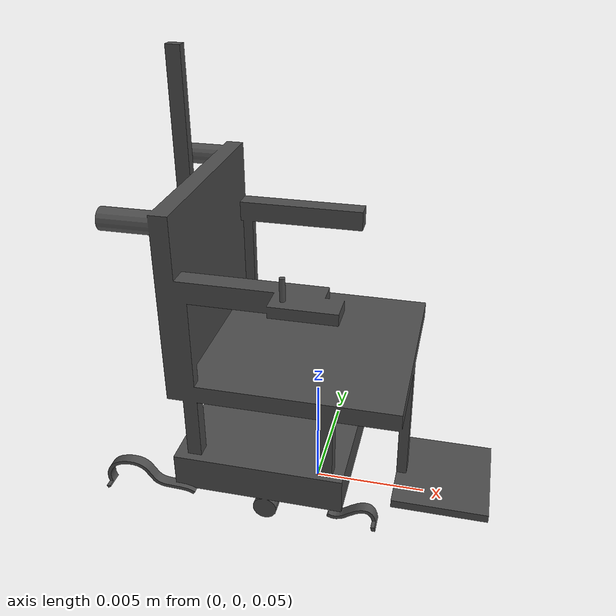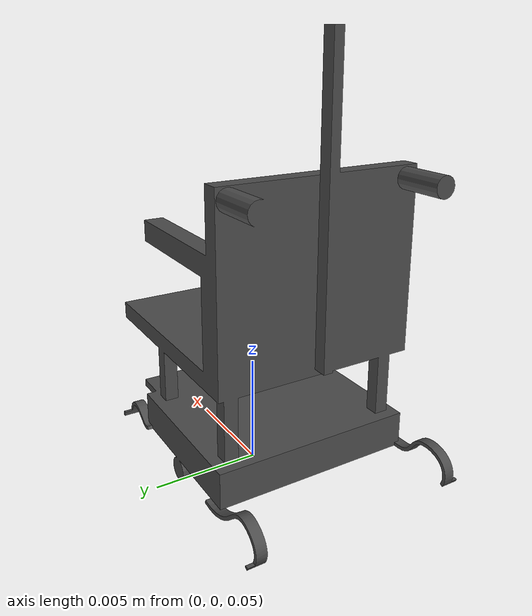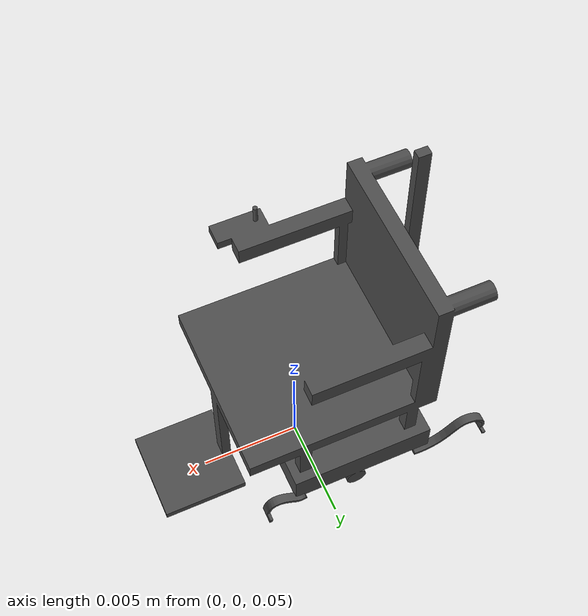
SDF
<?xml version="1.0" ?>
<sdf version="1.8">
  <model name='mwheelchair'>
    <pose>0 0 0.05 0 0 0</pose>

    <link name='chassis'>
      <inertial>
        <mass>10.0</mass>
        <inertia>
          <ixx>1.0</ixx><iyy>1.0</iyy><izz>1.0</izz>
        </inertia>
      </inertial>

      <visual name='visual'>
        <geometry>
          <mesh>
            <uri>model://wheelchair/meshes/wheelchair.stl</uri>
            <scale>0.015 0.015 0.015</scale>
          </mesh>
        </geometry>
        <material>
          <ambient>0.3 0.3 0.3 1</ambient>
          <diffuse>0.3 0.3 0.3 1</diffuse>
        </material>
      </visual>

      <collision name='collision'>
        <pose>0 0 0 0 0 0</pose>
        <geometry>
          <box>
            <size>0.8 0.6 0.8</size>
          </box>
        </geometry>
        <surface>
          <friction>
            <ode><mu>0.0</mu><mu2>0.0</mu2></ode>
          </friction>
        </surface>
      </collision>
    </link>

    <plugin
      filename="libignition-gazebo-odometry-publisher-system"
      name="ignition::gazebo::systems::OdometryPublisher">
      <odom_frame>odom</odom_frame>
      <robot_base_frame>chassis</robot_base_frame>
      <publish_odom_tf>true</publish_odom_tf>
    </plugin>

    <plugin
      filename="libignition-gazebo-velocity-control-system.so"
      name="ignition::gazebo::systems::VelocityControl">
      <topic>cmd_vel</topic>
    </plugin>

  </model>
</sdf>
